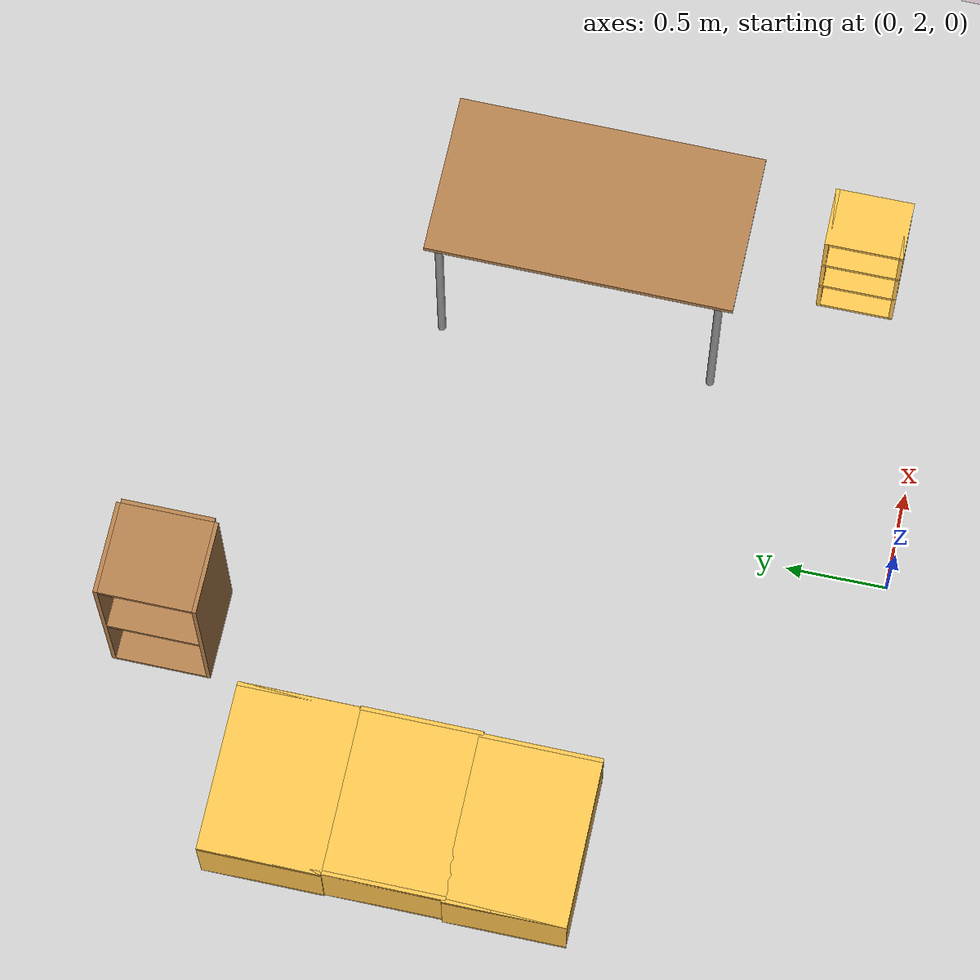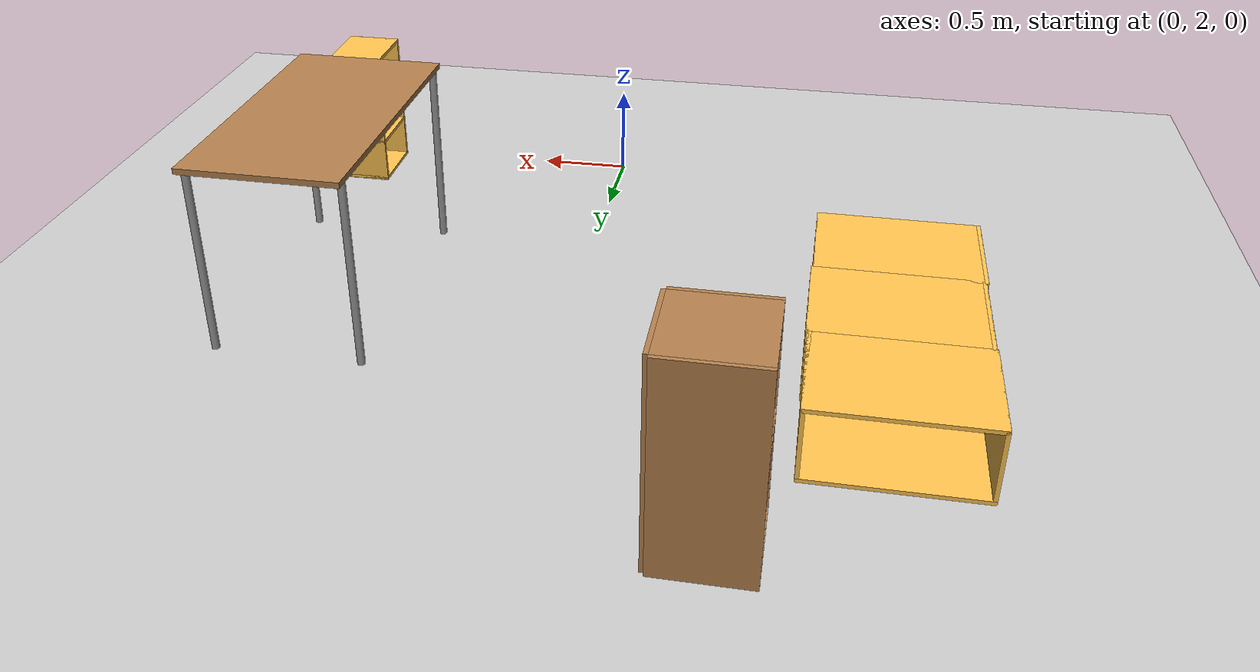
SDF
<sdf version="1.7">
 <world name="default">
  <model name="ground_plane">
   <static>1</static>
   <link name="link">
    <collision name="collision">
     <geometry><plane><normal>0 0 1</normal><size>100 100</size></plane></geometry>
     <surface><friction><ode><mu>100</mu><mu2>50</mu2></ode></friction></surface>
    </collision>
    <visual name="visual">
     <cast_shadows>0</cast_shadows>
     <geometry><plane><normal>0 0 1</normal><size>100 100</size></plane></geometry>
     <material>
      <script><uri>file://media/materials/scripts/gazebo.material</uri><name>Gazebo/Grey</name></script>
     </material>
    </visual>
   </link>
  </model>
  <model name="Wall_Cabinet_15x30">
   <pose>1.50346 2.62447 0.470207 1.55831 -0 0</pose>
   <link name="Wall_0">
    <pose>0 0.374 0.192 0 -0 0</pose>
    <inertial>
     <mass>0.9882</mass>
     <inertia><ixx>0.0072</ixx><iyy>0.0194</iyy><izz>0.0122</izz><ixy>0</ixy><ixz>0</ixz><iyz>0</iyz></inertia>
    </inertial>
    <collision name="Wall_0_Collision"><geometry><box><size>0.296 0.02 0.384</size></box></geometry></collision>
    <visual name="Wall_0_Visual">
     <geometry><box><size>0.296 0.02 0.384</size></box></geometry>
     <material>
      <script><uri>file://media/materials/scripts/gazebo.material</uri><name>Gazebo/Grey</name></script>
      <ambient>1 0.764706 0.305882 1</ambient>
     </material>
    </visual>
   </link>
   <joint name="0_2" type="fixed">
    <pose>0 0 0.192 0 -0 0</pose>
    <parent>Wall_2</parent>
    <child>Wall_0</child>
    <axis><xyz>0 0 1</xyz><limit><lower>-1e+16</lower><upper>1e+16</upper></limit></axis>
   </joint>
   <joint name="0_4" type="fixed">
    <pose>0 0 -0.192 0 -0 0</pose>
    <parent>Wall_4</parent>
    <child>Wall_0</child>
    <axis><xyz>0 0 1</xyz><limit><lower>-1e+16</lower><upper>1e+16</upper></limit></axis>
   </joint>
   <joint name="0_15" type="fixed">
    <pose>0.148 0 0 0 -0 0</pose>
    <parent>Wall_15</parent>
    <child>Wall_0</child>
    <axis><xyz>1 0 0</xyz><limit><lower>-1e+16</lower><upper>1e+16</upper></limit></axis>
   </joint>
   <link name="Wall_11">
    <pose>0 -0.132768 0.192 0 -0 0</pose>
    <inertial>
     <mass>0.9882</mass>
     <inertia><ixx>0.0072</ixx><iyy>0.0194</iyy><izz>0.0122</izz><ixy>0</ixy><ixz>0</ixz><iyz>0</iyz></inertia>
    </inertial>
    <collision name="Wall_11_Collision"><geometry><box><size>0.296 0.02 0.384</size></box></geometry></collision>
    <visual name="Wall_11_Visual">
     <geometry><box><size>0.296 0.02 0.384</size></box></geometry>
     <material>
      <script><uri>file://media/materials/scripts/gazebo.material</uri><name>Gazebo/Grey</name></script>
      <ambient>1 0.764706 0.305882 1</ambient>
     </material>
    </visual>
   </link>
   <joint name="11_2" type="fixed">
    <pose>0 0 0.192 0 -0 0</pose>
    <parent>Wall_2</parent>
    <child>Wall_11</child>
    <axis><xyz>0 0 1</xyz><limit><lower>-1e+16</lower><upper>1e+16</upper></limit></axis>
   </joint>
   <joint name="11_4" type="fixed">
    <pose>0 0 -0.192 0 -0 0</pose>
    <parent>Wall_4</parent>
    <child>Wall_11</child>
    <axis><xyz>0 0 1</xyz><limit><lower>-1e+16</lower><upper>1e+16</upper></limit></axis>
   </joint>
   <joint name="11_15" type="fixed">
    <pose>0.148 0 0 0 -0 0</pose>
    <parent>Wall_15</parent>
    <child>Wall_11</child>
    <axis><xyz>1 0 0</xyz><limit><lower>-1e+16</lower><upper>1e+16</upper></limit></axis>
   </joint>
   <link name="Wall_15">
    <pose>0.138 0 0.19 0 -0 0</pose>
    <inertial>
     <mass>2.5241</mass>
     <inertia><ixx>0.0305</ixx><iyy>0.1229</iyy><izz>0.1532</izz><ixy>0</ixy><ixz>0</ixz><iyz>0</iyz></inertia>
    </inertial>
    <collision name="Wall_15_Collision"><geometry><box><size>0.02 0.764 0.38</size></box></geometry></collision>
    <visual name="Wall_15_Visual">
     <geometry><box><size>0.02 0.764 0.38</size></box></geometry>
     <material>
      <script><uri>file://media/materials/scripts/gazebo.material</uri><name>Gazebo/Grey</name></script>
      <ambient>1 0.764706 0.305882 1</ambient>
     </material>
    </visual>
   </link>
   <joint name="15_2" type="fixed">
    <pose>0 0 0.19 0 -0 0</pose>
    <parent>Wall_2</parent>
    <child>Wall_15</child>
    <axis><xyz>0 0 1</xyz><limit><lower>-1e+16</lower><upper>1e+16</upper></limit></axis>
   </joint>
   <joint name="15_4" type="fixed">
    <pose>0 0 -0.19 0 -0 0</pose>
    <parent>Wall_4</parent>
    <child>Wall_15</child>
    <axis><xyz>0 0 1</xyz><limit><lower>-1e+16</lower><upper>1e+16</upper></limit></axis>
   </joint>
   <link name="Wall_2">
    <pose>0 0 0.374 0 -0 0</pose>
    <inertial>
     <mass>1.9765</mass>
     <inertia><ixx>0.0145</ixx><iyy>0.1116</iyy><izz>0.0972</izz><ixy>0</ixy><ixz>0</ixz><iyz>0</iyz></inertia>
    </inertial>
    <collision name="Wall_2_Collision"><geometry><box><size>0.296 0.768 0.02</size></box></geometry></collision>
    <visual name="Wall_2_Visual">
     <geometry><box><size>0.296 0.768 0.02</size></box></geometry>
     <material>
      <script><uri>file://media/materials/scripts/gazebo.material</uri><name>Gazebo/Grey</name></script>
      <ambient>1 0.764706 0.305882 1</ambient>
     </material>
    </visual>
   </link>
   <link name="Wall_4">
    <pose>0 0 0.01 0 -0 0</pose>
    <inertial>
     <mass>1.9765</mass>
     <inertia><ixx>0.0145</ixx><iyy>0.1116</iyy><izz>0.0972</izz><ixy>0</ixy><ixz>0</ixz><iyz>0</iyz></inertia>
    </inertial>
    <collision name="Wall_4_Collision"><geometry><box><size>0.296 0.768 0.02</size></box></geometry></collision>
    <visual name="Wall_4_Visual">
     <geometry><box><size>0.296 0.768 0.02</size></box></geometry>
     <material>
      <script><uri>file://media/materials/scripts/gazebo.material</uri><name>Gazebo/Grey</name></script>
      <ambient>1 0.764706 0.305882 1</ambient>
     </material>
    </visual>
    <pose>-0.181124 0 0 0 0 -1.5708</pose>
   </link>
   <link name="Wall_6">
    <pose>0 -0.374 0.192 0 -0 0</pose>
    <inertial>
     <mass>0.9882</mass>
     <inertia><ixx>0.0072</ixx><iyy>0.0194</iyy><izz>0.0122</izz><ixy>0</ixy><ixz>0</ixz><iyz>0</iyz></inertia>
    </inertial>
    <collision name="Wall_6_Collision"><geometry><box><size>0.296 0.02 0.384</size></box></geometry></collision>
    <visual name="Wall_6_Visual">
     <geometry><box><size>0.296 0.02 0.384</size></box></geometry>
     <material>
      <script><uri>file://media/materials/scripts/gazebo.material</uri><name>Gazebo/Grey</name></script>
      <ambient>1 0.764706 0.305882 1</ambient>
     </material>
    </visual>
   </link>
   <joint name="6_2" type="fixed">
    <pose>0 0 0.192 0 -0 0</pose>
    <parent>Wall_2</parent>
    <child>Wall_6</child>
    <axis><xyz>0 0 1</xyz><limit><lower>-1e+16</lower><upper>1e+16</upper></limit></axis>
   </joint>
   <joint name="6_4" type="fixed">
    <pose>0 0 -0.192 0 -0 0</pose>
    <parent>Wall_4</parent>
    <child>Wall_6</child>
    <axis><xyz>0 0 1</xyz><limit><lower>-1e+16</lower><upper>1e+16</upper></limit></axis>
   </joint>
   <joint name="6_15" type="fixed">
    <pose>0.148 0 0 0 -0 0</pose>
    <parent>Wall_15</parent>
    <child>Wall_6</child>
    <axis><xyz>1 0 0</xyz><limit><lower>-1e+16</lower><upper>1e+16</upper></limit></axis>
   </joint>
   <link name="Wall_8">
    <pose>0 0.120833 0.192 0 -0 0</pose>
    <inertial>
     <mass>0.9882</mass>
     <inertia><ixx>0.0072</ixx><iyy>0.0194</iyy><izz>0.0122</izz><ixy>0</ixy><ixz>0</ixz><iyz>0</iyz></inertia>
    </inertial>
    <collision name="Wall_8_Collision"><geometry><box><size>0.296 0.02 0.384</size></box></geometry></collision>
    <visual name="Wall_8_Visual">
     <geometry><box><size>0.296 0.02 0.384</size></box></geometry>
     <material>
      <script><uri>file://media/materials/scripts/gazebo.material</uri><name>Gazebo/Grey</name></script>
      <ambient>1 0.764706 0.305882 1</ambient>
     </material>
    </visual>
   </link>
   <joint name="8_2" type="fixed">
    <pose>0 0 0.192 0 -0 0</pose>
    <parent>Wall_2</parent>
    <child>Wall_8</child>
    <axis><xyz>0 0 1</xyz><limit><lower>-1e+16</lower><upper>1e+16</upper></limit></axis>
   </joint>
   <joint name="8_4" type="fixed">
    <pose>0 0 -0.192 0 -0 0</pose>
    <parent>Wall_4</parent>
    <child>Wall_8</child>
    <axis><xyz>0 0 1</xyz><limit><lower>-1e+16</lower><upper>1e+16</upper></limit></axis>
   </joint>
   <joint name="8_15" type="fixed">
    <pose>0.148 0 0 0 -0 0</pose>
    <parent>Wall_15</parent>
    <child>Wall_8</child>
    <axis><xyz>1 0 0</xyz><limit><lower>-1e+16</lower><upper>1e+16</upper></limit></axis>
   </joint>
   <static>1</static>
  </model>
  <model name="cabinet">
   <static>1</static>
   <link name="cabinet_bottom_plate">
    <inertial>
     <pose>0 0 -1 0 -0 0</pose>
     <inertia><ixx>2.05</ixx><ixy>0</ixy><ixz>0</ixz><iyy>2.05</iyy><iyz>0</iyz><izz>2.05</izz></inertia>
     <mass>25</mass>
    </inertial>
    <collision name="cabinet_bottom_plate_geom">
     <pose>0 0 0.01 0 -0 0</pose>
     <geometry><box><size>0.45 0.45 0.02</size></box></geometry>
    </collision>
    <visual name="cabinet_bottom_plate_geom_visual">
     <pose>0 0 0.01 0 -0 0</pose>
     <geometry><box><size>0.45 0.45 0.02</size></box></geometry>
     <material>
      <script><uri>file://media/materials/scripts/gazebo.material</uri><name>Gazebo/Wood</name></script>
     </material>
    </visual>
    <collision name="cabinet_bottom_plate_geom_cabinet_back_plate">
     <pose>0.235 0 0.51 0 -0 0</pose>
     <geometry><box><size>0.02 0.45 1.02</size></box></geometry>
    </collision>
    <visual name="cabinet_bottom_plate_geom_cabinet_back_plate_visual">
     <pose>0.235 0 0.51 0 -0 0</pose>
     <geometry><box><size>0.02 0.45 1.02</size></box></geometry>
     <material>
      <script><uri>file://media/materials/scripts/gazebo.material</uri><name>Gazebo/Wood</name></script>
     </material>
    </visual>
    <collision name="cabinet_bottom_plate_geom_cabinet_left_plate">
     <pose>0 0.235 0.51 0 -0 0</pose>
     <geometry><box><size>0.45 0.02 1.02</size></box></geometry>
    </collision>
    <visual name="cabinet_bottom_plate_geom_cabinet_left_plate_visual">
     <pose>0 0.235 0.51 0 -0 0</pose>
     <geometry><box><size>0.45 0.02 1.02</size></box></geometry>
     <material>
      <script><uri>file://media/materials/scripts/gazebo.material</uri><name>Gazebo/Wood</name></script>
     </material>
    </visual>
    <collision name="cabinet_bottom_plate_geom_cabinet_middle_plate">
     <pose>0 0 0.51 0 -0 0</pose>
     <geometry><box><size>0.45 0.45 0.02</size></box></geometry>
    </collision>
    <visual name="cabinet_bottom_plate_geom_cabinet_middle_plate_visual">
     <pose>0 0 0.51 0 -0 0</pose>
     <geometry><box><size>0.45 0.45 0.02</size></box></geometry>
     <material>
      <script><uri>file://media/materials/scripts/gazebo.material</uri><name>Gazebo/Wood</name></script>
     </material>
    </visual>
    <collision name="cabinet_bottom_plate_geom_cabinet_right_plate">
     <pose>0 -0.235 0.51 0 -0 0</pose>
     <geometry><box><size>0.45 0.02 1.02</size></box></geometry>
    </collision>
    <visual name="cabinet_bottom_plate_geom_cabinet_right_plate_visual">
     <pose>0 -0.235 0.51 0 -0 0</pose>
     <geometry><box><size>0.45 0.02 1.02</size></box></geometry>
     <material>
      <script><uri>file://media/materials/scripts/gazebo.material</uri><name>Gazebo/Wood</name></script>
     </material>
    </visual>
    <collision name="cabinet_bottom_plate_geom_cabinet_top_plate">
     <pose>0 0 1.01 0 -0 0</pose>
     <geometry><box><size>0.45 0.45 0.02</size></box></geometry>
    </collision>
    <visual name="cabinet_bottom_plate_geom_cabinet_top_plate_visual">
     <pose>0 0 1.01 0 -0 0</pose>
     <geometry><box><size>0.45 0.45 0.02</size></box></geometry>
     <material>
      <script><uri>file://media/materials/scripts/gazebo.material</uri><name>Gazebo/Wood</name></script>
     </material>
    </visual>
   </link>
   <pose>-0.918642 5.35376 0 0 -0 0</pose>
  </model>
  <model name="Fridge_Cabinet_33x15_clone_2_clone">
   <link name="Wall_17">
    <pose>0 0 0.01 0 -0 0</pose>
    <inertial>
     <mass>4.8627</mass>
     <inertia><ixx>0.146</ixx><iyy>0.4318</iyy><izz>0.2861</izz><ixy>0</ixy><ixz>0</ixz><iyz>0</iyz></inertia>
    </inertial>
    <collision name="Wall_17_Collision"><geometry><box><size>0.84 0.6 0.02</size></box></geometry></collision>
    <visual name="Wall_17_Visual">
     <geometry><box><size>0.84 0.6 0.02</size></box></geometry>
     <material>
      <script><uri>file://media/materials/scripts/gazebo.material</uri><name>Gazebo/Grey</name></script>
      <ambient>1 0.764706 0.305882 1</ambient>
     </material>
    </visual>
   </link>
   <joint name="17_21" type="fixed">
    <pose>0.42 0 0 0 -0 0</pose>
    <parent>Wall_21</parent>
    <child>Wall_17</child>
    <axis><xyz>1 0 0</xyz><limit><lower>-1e+16</lower><upper>1e+16</upper></limit></axis>
   </joint>
   <joint name="17_19" type="fixed">
    <pose>-0.42 0 0 0 -0 0</pose>
    <parent>Wall_19</parent>
    <child>Wall_17</child>
    <axis><xyz>1 0 0</xyz><limit><lower>-1e+16</lower><upper>1e+16</upper></limit></axis>
   </joint>
   <joint name="17_25" type="fixed">
    <pose>0 -0.3 0 0 -0 0</pose>
    <parent>Wall_25</parent>
    <child>Wall_17</child>
    <axis><xyz>0 1 0</xyz><limit><lower>-1e+16</lower><upper>1e+16</upper></limit></axis>
   </joint>
   <link name="Wall_19">
    <pose>-0.41 0 0.192 0 -0 0</pose>
    <inertial>
     <mass>2.223</mass>
     <inertia><ixx>0.0668</ixx><iyy>0.094</iyy><izz>0.0274</izz><ixy>0</ixy><ixz>0</ixz><iyz>0</iyz></inertia>
    </inertial>
    <collision name="Wall_19_Collision"><geometry><box><size>0.02 0.6 0.384</size></box></geometry></collision>
    <visual name="Wall_19_Visual">
     <geometry><box><size>0.02 0.6 0.384</size></box></geometry>
     <material>
      <script><uri>file://media/materials/scripts/gazebo.material</uri><name>Gazebo/Grey</name></script>
      <ambient>1 0.764706 0.305882 1</ambient>
     </material>
    </visual>
   </link>
   <link name="Wall_21">
    <pose>0.41 0 0.192 0 -0 0</pose>
    <inertial>
     <mass>2.223</mass>
     <inertia><ixx>0.0668</ixx><iyy>0.094</iyy><izz>0.0274</izz><ixy>0</ixy><ixz>0</ixz><iyz>0</iyz></inertia>
    </inertial>
    <collision name="Wall_21_Collision"><geometry><box><size>0.02 0.6 0.384</size></box></geometry></collision>
    <visual name="Wall_21_Visual">
     <geometry><box><size>0.02 0.6 0.384</size></box></geometry>
     <material>
      <script><uri>file://media/materials/scripts/gazebo.material</uri><name>Gazebo/Grey</name></script>
      <ambient>1 0.764706 0.305882 1</ambient>
     </material>
    </visual>
   </link>
   <link name="Wall_23">
    <pose>0 0 0.374 0 -0 0</pose>
    <inertial>
     <mass>4.8627</mass>
     <inertia><ixx>0.146</ixx><iyy>0.4318</iyy><izz>0.2861</izz><ixy>0</ixy><ixz>0</ixz><iyz>0</iyz></inertia>
    </inertial>
    <collision name="Wall_23_Collision"><geometry><box><size>0.84 0.6 0.02</size></box></geometry></collision>
    <visual name="Wall_23_Visual">
     <geometry><box><size>0.84 0.6 0.02</size></box></geometry>
     <material>
      <script><uri>file://media/materials/scripts/gazebo.material</uri><name>Gazebo/Grey</name></script>
      <ambient>1 0.764706 0.305882 1</ambient>
     </material>
    </visual>
   </link>
   <joint name="23_21" type="fixed">
    <pose>0.42 0 0 0 -0 0</pose>
    <parent>Wall_21</parent>
    <child>Wall_23</child>
    <axis><xyz>0 0 1</xyz><limit><lower>-1e+16</lower><upper>1e+16</upper></limit></axis>
   </joint>
   <joint name="23_19" type="fixed">
    <pose>-0.42 0 0 0 -0 0</pose>
    <parent>Wall_19</parent>
    <child>Wall_23</child>
    <axis><xyz>0 0 1</xyz><limit><lower>-1e+16</lower><upper>1e+16</upper></limit></axis>
   </joint>
   <joint name="23_25" type="fixed">
    <pose>0 -0.3 0 0 -0 0</pose>
    <parent>Wall_25</parent>
    <child>Wall_23</child>
    <axis><xyz>0 0 1</xyz><limit><lower>-1e+16</lower><upper>1e+16</upper></limit></axis>
   </joint>
   <link name="Wall_25">
    <pose>0 -0.29 0.19 0 -0 0</pose>
    <inertial>
     <mass>3.0651</mass>
     <inertia><ixx>0.037</ixx><iyy>0.1786</iyy><izz>0.2154</izz><ixy>0</ixy><ixz>0</ixz><iyz>0</iyz></inertia>
    </inertial>
    <collision name="Wall_25_Collision"><geometry><box><size>0.836 0.02 0.38</size></box></geometry></collision>
    <visual name="Wall_25_Visual">
     <geometry><box><size>0.836 0.02 0.38</size></box></geometry>
     <material>
      <script><uri>file://media/materials/scripts/gazebo.material</uri><name>Gazebo/Grey</name></script>
      <ambient>1 0.764706 0.305882 1</ambient>
     </material>
    </visual>
   </link>
   <joint name="25_21" type="fixed">
    <pose>0.42 0 0 0 -0 0</pose>
    <parent>Wall_21</parent>
    <child>Wall_25</child>
    <axis><xyz>0 1 0</xyz><limit><lower>-1e+16</lower><upper>1e+16</upper></limit></axis>
   </joint>
   <joint name="25_19" type="fixed">
    <pose>-0.42 0 0 0 -0 0</pose>
    <parent>Wall_19</parent>
    <child>Wall_25</child>
    <axis><xyz>0 1 0</xyz><limit><lower>-1e+16</lower><upper>1e+16</upper></limit></axis>
   </joint>
   <static>1</static>
   <pose>-1.65867 4.6274 -0.000205 0 -0 0</pose>
  </model>
  <model name="Fridge_Cabinet_33x15_clone_2_clone_0">
   <link name="Wall_17">
    <pose>0 0 0.01 0 -0 0</pose>
    <inertial>
     <mass>4.8627</mass>
     <inertia><ixx>0.146</ixx><iyy>0.4318</iyy><izz>0.2861</izz><ixy>0</ixy><ixz>0</ixz><iyz>0</iyz></inertia>
    </inertial>
    <collision name="Wall_17_Collision"><geometry><box><size>0.84 0.6 0.02</size></box></geometry></collision>
    <visual name="Wall_17_Visual">
     <geometry><box><size>0.84 0.6 0.02</size></box></geometry>
     <material>
      <script><uri>file://media/materials/scripts/gazebo.material</uri><name>Gazebo/Grey</name></script>
      <ambient>1 0.764706 0.305882 1</ambient>
     </material>
    </visual>
   </link>
   <joint name="17_21" type="fixed">
    <pose>0.42 0 0 0 -0 0</pose>
    <parent>Wall_21</parent>
    <child>Wall_17</child>
    <axis><xyz>1 0 0</xyz><limit><lower>-1e+16</lower><upper>1e+16</upper></limit></axis>
   </joint>
   <joint name="17_19" type="fixed">
    <pose>-0.42 0 0 0 -0 0</pose>
    <parent>Wall_19</parent>
    <child>Wall_17</child>
    <axis><xyz>1 0 0</xyz><limit><lower>-1e+16</lower><upper>1e+16</upper></limit></axis>
   </joint>
   <joint name="17_25" type="fixed">
    <pose>0 -0.3 0 0 -0 0</pose>
    <parent>Wall_25</parent>
    <child>Wall_17</child>
    <axis><xyz>0 1 0</xyz><limit><lower>-1e+16</lower><upper>1e+16</upper></limit></axis>
   </joint>
   <link name="Wall_19">
    <pose>-0.41 0 0.192 0 -0 0</pose>
    <inertial>
     <mass>2.223</mass>
     <inertia><ixx>0.0668</ixx><iyy>0.094</iyy><izz>0.0274</izz><ixy>0</ixy><ixz>0</ixz><iyz>0</iyz></inertia>
    </inertial>
    <collision name="Wall_19_Collision"><geometry><box><size>0.02 0.6 0.384</size></box></geometry></collision>
    <visual name="Wall_19_Visual">
     <geometry><box><size>0.02 0.6 0.384</size></box></geometry>
     <material>
      <script><uri>file://media/materials/scripts/gazebo.material</uri><name>Gazebo/Grey</name></script>
      <ambient>1 0.764706 0.305882 1</ambient>
     </material>
    </visual>
   </link>
   <link name="Wall_21">
    <pose>0.41 0 0.192 0 -0 0</pose>
    <inertial>
     <mass>2.223</mass>
     <inertia><ixx>0.0668</ixx><iyy>0.094</iyy><izz>0.0274</izz><ixy>0</ixy><ixz>0</ixz><iyz>0</iyz></inertia>
    </inertial>
    <collision name="Wall_21_Collision"><geometry><box><size>0.02 0.6 0.384</size></box></geometry></collision>
    <visual name="Wall_21_Visual">
     <geometry><box><size>0.02 0.6 0.384</size></box></geometry>
     <material>
      <script><uri>file://media/materials/scripts/gazebo.material</uri><name>Gazebo/Grey</name></script>
      <ambient>1 0.764706 0.305882 1</ambient>
     </material>
    </visual>
   </link>
   <link name="Wall_23">
    <pose>0 0 0.374 0 -0 0</pose>
    <inertial>
     <mass>4.8627</mass>
     <inertia><ixx>0.146</ixx><iyy>0.4318</iyy><izz>0.2861</izz><ixy>0</ixy><ixz>0</ixz><iyz>0</iyz></inertia>
    </inertial>
    <collision name="Wall_23_Collision"><geometry><box><size>0.84 0.6 0.02</size></box></geometry></collision>
    <visual name="Wall_23_Visual">
     <geometry><box><size>0.84 0.6 0.02</size></box></geometry>
     <material>
      <script><uri>file://media/materials/scripts/gazebo.material</uri><name>Gazebo/Grey</name></script>
      <ambient>1 0.764706 0.305882 1</ambient>
     </material>
    </visual>
   </link>
   <joint name="23_21" type="fixed">
    <pose>0.42 0 0 0 -0 0</pose>
    <parent>Wall_21</parent>
    <child>Wall_23</child>
    <axis><xyz>0 0 1</xyz><limit><lower>-1e+16</lower><upper>1e+16</upper></limit></axis>
   </joint>
   <joint name="23_19" type="fixed">
    <pose>-0.42 0 0 0 -0 0</pose>
    <parent>Wall_19</parent>
    <child>Wall_23</child>
    <axis><xyz>0 0 1</xyz><limit><lower>-1e+16</lower><upper>1e+16</upper></limit></axis>
   </joint>
   <joint name="23_25" type="fixed">
    <pose>0 -0.3 0 0 -0 0</pose>
    <parent>Wall_25</parent>
    <child>Wall_23</child>
    <axis><xyz>0 0 1</xyz><limit><lower>-1e+16</lower><upper>1e+16</upper></limit></axis>
   </joint>
   <link name="Wall_25">
    <pose>0 -0.29 0.19 0 -0 0</pose>
    <inertial>
     <mass>3.0651</mass>
     <inertia><ixx>0.037</ixx><iyy>0.1786</iyy><izz>0.2154</izz><ixy>0</ixy><ixz>0</ixz><iyz>0</iyz></inertia>
    </inertial>
    <collision name="Wall_25_Collision"><geometry><box><size>0.836 0.02 0.38</size></box></geometry></collision>
    <visual name="Wall_25_Visual">
     <geometry><box><size>0.836 0.02 0.38</size></box></geometry>
     <material>
      <script><uri>file://media/materials/scripts/gazebo.material</uri><name>Gazebo/Grey</name></script>
      <ambient>1 0.764706 0.305882 1</ambient>
     </material>
    </visual>
   </link>
   <joint name="25_21" type="fixed">
    <pose>0.42 0 0 0 -0 0</pose>
    <parent>Wall_21</parent>
    <child>Wall_25</child>
    <axis><xyz>0 1 0</xyz><limit><lower>-1e+16</lower><upper>1e+16</upper></limit></axis>
   </joint>
   <joint name="25_19" type="fixed">
    <pose>-0.42 0 0 0 -0 0</pose>
    <parent>Wall_19</parent>
    <child>Wall_25</child>
    <axis><xyz>0 1 0</xyz><limit><lower>-1e+16</lower><upper>1e+16</upper></limit></axis>
   </joint>
   <static>1</static>
   <pose>-1.65287 4.03303 -0.000205 0 -0 0</pose>
  </model>
  <model name="Fridge_Cabinet_33x15_clone_2_clone_1">
   <link name="Wall_17">
    <pose>0 0 0.01 0 -0 0</pose>
    <inertial>
     <mass>4.8627</mass>
     <inertia><ixx>0.146</ixx><iyy>0.4318</iyy><izz>0.2861</izz><ixy>0</ixy><ixz>0</ixz><iyz>0</iyz></inertia>
    </inertial>
    <collision name="Wall_17_Collision"><geometry><box><size>0.84 0.6 0.02</size></box></geometry></collision>
    <visual name="Wall_17_Visual">
     <geometry><box><size>0.84 0.6 0.02</size></box></geometry>
     <material>
      <script><uri>file://media/materials/scripts/gazebo.material</uri><name>Gazebo/Grey</name></script>
      <ambient>1 0.764706 0.305882 1</ambient>
     </material>
    </visual>
   </link>
   <joint name="17_21" type="fixed">
    <pose>0.42 0 0 0 -0 0</pose>
    <parent>Wall_21</parent>
    <child>Wall_17</child>
    <axis><xyz>1 0 0</xyz><limit><lower>-1e+16</lower><upper>1e+16</upper></limit></axis>
   </joint>
   <joint name="17_19" type="fixed">
    <pose>-0.42 0 0 0 -0 0</pose>
    <parent>Wall_19</parent>
    <child>Wall_17</child>
    <axis><xyz>1 0 0</xyz><limit><lower>-1e+16</lower><upper>1e+16</upper></limit></axis>
   </joint>
   <joint name="17_25" type="fixed">
    <pose>0 -0.3 0 0 -0 0</pose>
    <parent>Wall_25</parent>
    <child>Wall_17</child>
    <axis><xyz>0 1 0</xyz><limit><lower>-1e+16</lower><upper>1e+16</upper></limit></axis>
   </joint>
   <link name="Wall_19">
    <pose>-0.41 0 0.192 0 -0 0</pose>
    <inertial>
     <mass>2.223</mass>
     <inertia><ixx>0.0668</ixx><iyy>0.094</iyy><izz>0.0274</izz><ixy>0</ixy><ixz>0</ixz><iyz>0</iyz></inertia>
    </inertial>
    <collision name="Wall_19_Collision"><geometry><box><size>0.02 0.6 0.384</size></box></geometry></collision>
    <visual name="Wall_19_Visual">
     <geometry><box><size>0.02 0.6 0.384</size></box></geometry>
     <material>
      <script><uri>file://media/materials/scripts/gazebo.material</uri><name>Gazebo/Grey</name></script>
      <ambient>1 0.764706 0.305882 1</ambient>
     </material>
    </visual>
   </link>
   <link name="Wall_21">
    <pose>0.41 0 0.192 0 -0 0</pose>
    <inertial>
     <mass>2.223</mass>
     <inertia><ixx>0.0668</ixx><iyy>0.094</iyy><izz>0.0274</izz><ixy>0</ixy><ixz>0</ixz><iyz>0</iyz></inertia>
    </inertial>
    <collision name="Wall_21_Collision"><geometry><box><size>0.02 0.6 0.384</size></box></geometry></collision>
    <visual name="Wall_21_Visual">
     <geometry><box><size>0.02 0.6 0.384</size></box></geometry>
     <material>
      <script><uri>file://media/materials/scripts/gazebo.material</uri><name>Gazebo/Grey</name></script>
      <ambient>1 0.764706 0.305882 1</ambient>
     </material>
    </visual>
   </link>
   <link name="Wall_23">
    <pose>0 0 0.374 0 -0 0</pose>
    <inertial>
     <mass>4.8627</mass>
     <inertia><ixx>0.146</ixx><iyy>0.4318</iyy><izz>0.2861</izz><ixy>0</ixy><ixz>0</ixz><iyz>0</iyz></inertia>
    </inertial>
    <collision name="Wall_23_Collision"><geometry><box><size>0.84 0.6 0.02</size></box></geometry></collision>
    <visual name="Wall_23_Visual">
     <geometry><box><size>0.84 0.6 0.02</size></box></geometry>
     <material>
      <script><uri>file://media/materials/scripts/gazebo.material</uri><name>Gazebo/Grey</name></script>
      <ambient>1 0.764706 0.305882 1</ambient>
     </material>
    </visual>
   </link>
   <joint name="23_21" type="fixed">
    <pose>0.42 0 0 0 -0 0</pose>
    <parent>Wall_21</parent>
    <child>Wall_23</child>
    <axis><xyz>0 0 1</xyz><limit><lower>-1e+16</lower><upper>1e+16</upper></limit></axis>
   </joint>
   <joint name="23_19" type="fixed">
    <pose>-0.42 0 0 0 -0 0</pose>
    <parent>Wall_19</parent>
    <child>Wall_23</child>
    <axis><xyz>0 0 1</xyz><limit><lower>-1e+16</lower><upper>1e+16</upper></limit></axis>
   </joint>
   <joint name="23_25" type="fixed">
    <pose>0 -0.3 0 0 -0 0</pose>
    <parent>Wall_25</parent>
    <child>Wall_23</child>
    <axis><xyz>0 0 1</xyz><limit><lower>-1e+16</lower><upper>1e+16</upper></limit></axis>
   </joint>
   <link name="Wall_25">
    <pose>0 -0.29 0.19 0 -0 0</pose>
    <inertial>
     <mass>3.0651</mass>
     <inertia><ixx>0.037</ixx><iyy>0.1786</iyy><izz>0.2154</izz><ixy>0</ixy><ixz>0</ixz><iyz>0</iyz></inertia>
    </inertial>
    <collision name="Wall_25_Collision"><geometry><box><size>0.836 0.02 0.38</size></box></geometry></collision>
    <visual name="Wall_25_Visual">
     <geometry><box><size>0.836 0.02 0.38</size></box></geometry>
     <material>
      <script><uri>file://media/materials/scripts/gazebo.material</uri><name>Gazebo/Grey</name></script>
      <ambient>1 0.764706 0.305882 1</ambient>
     </material>
    </visual>
   </link>
   <joint name="25_21" type="fixed">
    <pose>0.42 0 0 0 -0 0</pose>
    <parent>Wall_21</parent>
    <child>Wall_25</child>
    <axis><xyz>0 1 0</xyz><limit><lower>-1e+16</lower><upper>1e+16</upper></limit></axis>
   </joint>
   <joint name="25_19" type="fixed">
    <pose>-0.42 0 0 0 -0 0</pose>
    <parent>Wall_19</parent>
    <child>Wall_25</child>
    <axis><xyz>0 1 0</xyz><limit><lower>-1e+16</lower><upper>1e+16</upper></limit></axis>
   </joint>
   <static>1</static>
   <pose>-1.66289 3.45262 -0.000205 0 -0 0</pose>
  </model>
  <model name="table_0">
   <static>1</static>
   <link name="link">
    <collision name="surface">
     <pose>0 0 1 0 -0 0</pose>
     <geometry><box><size>1.5 0.8 0.03</size></box></geometry>
     <surface><friction><ode><mu>0.6</mu><mu2>0.6</mu2></ode></friction></surface>
    </collision>
    <visual name="visual1">
     <pose>0 0 1 0 -0 0</pose>
     <geometry><box><size>1.5 0.8 0.03</size></box></geometry>
     <material>
      <script><uri>file://media/materials/scripts/gazebo.material</uri><name>Gazebo/Wood</name></script>
     </material>
    </visual>
    <collision name="front_left_leg">
     <pose>0.68 0.38 0.5 0 -0 0</pose>
     <geometry><cylinder><radius>0.02</radius><length>1</length></cylinder></geometry>
    </collision>
    <visual name="front_left_leg">
     <pose>0.68 0.38 0.5 0 -0 0</pose>
     <geometry><cylinder><radius>0.02</radius><length>1</length></cylinder></geometry>
     <material>
      <script><uri>file://media/materials/scripts/gazebo.material</uri><name>Gazebo/Grey</name></script>
     </material>
    </visual>
    <collision name="front_right_leg">
     <pose>0.68 -0.38 0.5 0 -0 0</pose>
     <geometry><cylinder><radius>0.02</radius><length>1</length></cylinder></geometry>
    </collision>
    <visual name="front_right_leg">
     <pose>0.68 -0.38 0.5 0 -0 0</pose>
     <geometry><cylinder><radius>0.02</radius><length>1</length></cylinder></geometry>
     <material>
      <script><uri>file://media/materials/scripts/gazebo.material</uri><name>Gazebo/Grey</name></script>
     </material>
    </visual>
    <collision name="back_right_leg">
     <pose>-0.68 -0.38 0.5 0 -0 0</pose>
     <geometry><cylinder><radius>0.02</radius><length>1</length></cylinder></geometry>
    </collision>
    <visual name="back_right_leg">
     <pose>-0.68 -0.38 0.5 0 -0 0</pose>
     <geometry><cylinder><radius>0.02</radius><length>1</length></cylinder></geometry>
     <material>
      <script><uri>file://media/materials/scripts/gazebo.material</uri><name>Gazebo/Grey</name></script>
     </material>
    </visual>
    <collision name="back_left_leg">
     <pose>-0.68 0.38 0.5 0 -0 0</pose>
     <geometry><cylinder><radius>0.02</radius><length>1</length></cylinder></geometry>
    </collision>
    <visual name="back_left_leg">
     <pose>-0.68 0.38 0.5 0 -0 0</pose>
     <geometry><cylinder><radius>0.02</radius><length>1</length></cylinder></geometry>
     <material>
      <script><uri>file://media/materials/scripts/gazebo.material</uri><name>Gazebo/Grey</name></script>
     </material>
    </visual>
   </link>
   <pose>1.25854 3.73409 0 0 0 -1.57437</pose>
  </model>
 </world>
</sdf>
